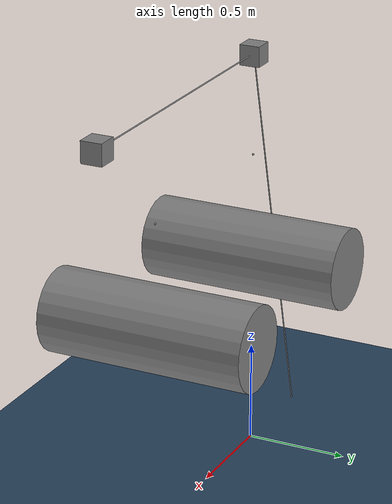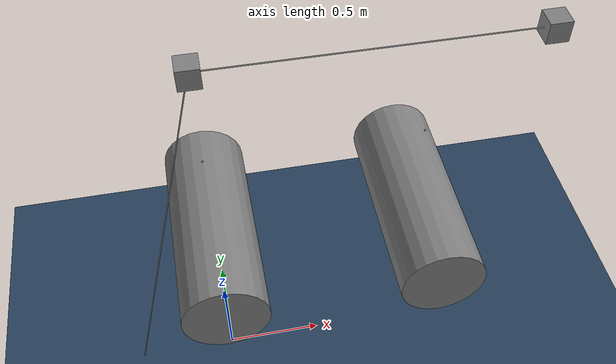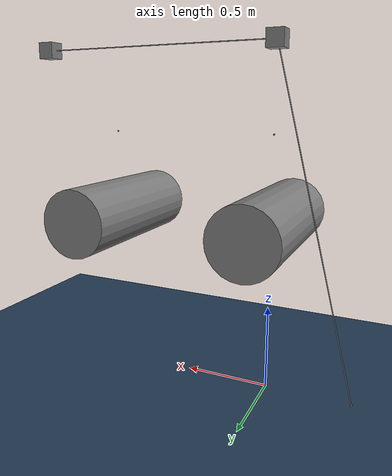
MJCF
<mujoco model="ur5e scene">
<!-- ENGINE SETUP -->
  <compiler angle="radian" meshdir="universal_robots_ur5e/assets" autolimits="true"/>
  <option timestep="0.001" integrator="Euler" >
    <flag multiccd="enable"/>
  </option>
  <statistic center="0.3 0 0.4" extent="3"/>

  <asset>
    <texture type="skybox" builtin="gradient" rgb1="0.3 0.5 0.7" rgb2="0 0 0" width="512" height="3072"/>
    <texture type="2d" name="groundplane" builtin="checker" mark="edge" rgb1="0.2 0.3 0.4" rgb2="0.1 0.2 0.3"
      markrgb="0.8 0.8 0.8" width="300" height="300"/>
    <material name="groundplane" texture="groundplane" texuniform="true" texrepeat="5 5" reflectance="0.2"/>

    <texture type="2d" name="conveyor" builtin="gradient" mark="edge" rgb1="0.5 0.1 0.1" rgb2="0.8 0.1 0.1"
      markrgb="0.8 0.8 0.8" width="300" height="300"/>
    <material name="conveyor" texture="conveyor" texuniform="true" texrepeat="5 5" reflectance="0.2"/>
  </asset>

  <!-- MODEL TREE STARTS HERE -->
  <worldbody>
    <light pos="0 0 1.5" dir="0 0 -1" directional="true"/>
    <geom name="floor" size="0 0 0.05" type="plane" material="groundplane" condim="3"/>

    <geom name="b0" type="cylinder" pos="0 0 1" size="0.2 0.5 0" euler="1.5708 0 0"/>
    <geom name="b1" type="cylinder" pos="1 0 1" size="0.2 0.5 0" euler="1.5708 0 0"/>

    <site name="s0" pos="-0.5 0 0"/>
    <site name="s1" pos="0 0 1.5"/>
    <site name="s2" pos="1 0 1.5"/>

    <body pos="1.5 0 2">
        <geom type="box" mass="0.01" size="0.05 0.05 0.05" euler="0 0 0"/>
        <site name="s3"/>
        <freejoint/>
    </body>

    <body pos="0 0 2">
        <geom type="box" mass="0.01" size="0.05 0.05 0.05" euler="0 0 0"/>
        <site name="bla"/>
        <freejoint/>
    </body>
  </worldbody>

<tendon>
    <spatial range="0.5 6" stiffness="-0.5">
      <site site="s0"/>
      <geom geom="b0"/>
      <site site="bla"/>
      <geom geom="b1"/>
      <site site="s3"/>

    </spatial>
  </tendon>

</mujoco>
